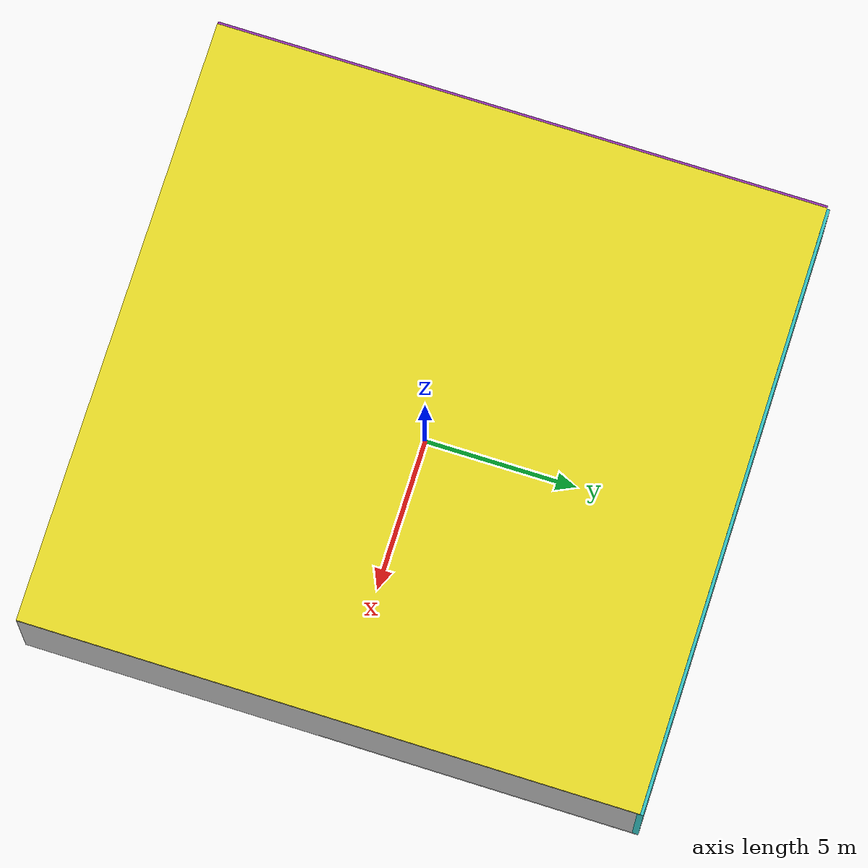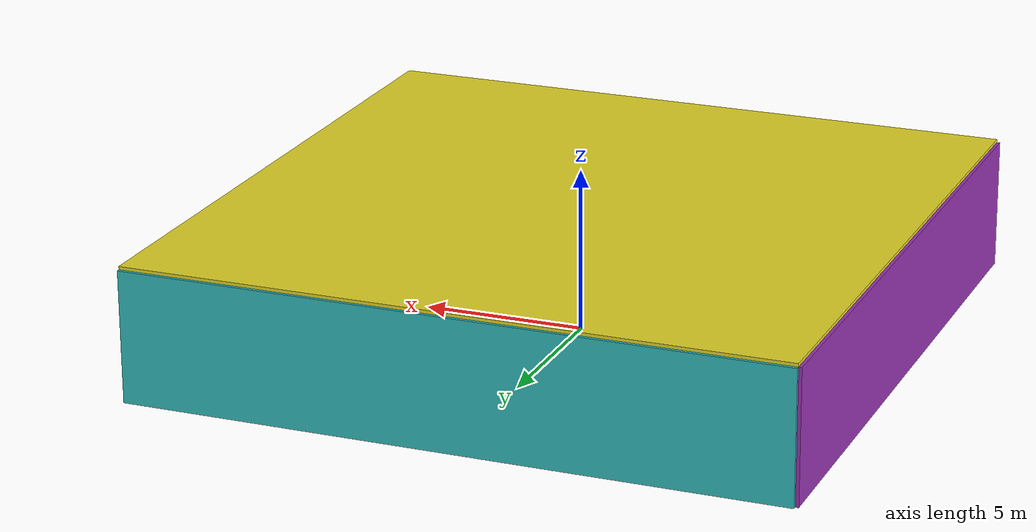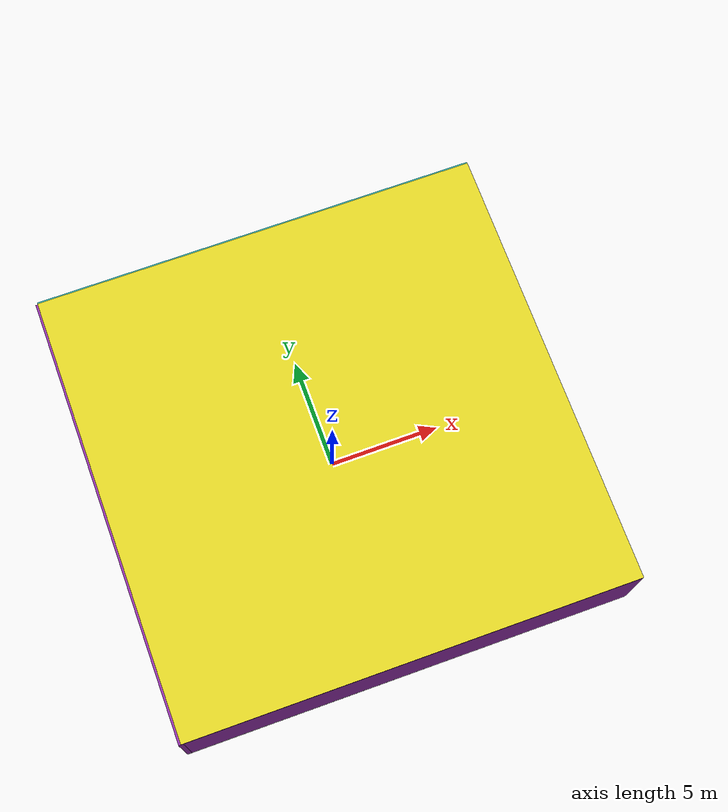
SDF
<sdf version="1.4">
 <world name="default">
  <physics type="ode">
   <max_step_size>0.001</max_step_size>
   <real_time_factor>1</real_time_factor>
   <real_time_update_rate>1000</real_time_update_rate>
   <gravity>0 0 -9.8</gravity>
  </physics>
  <scene><ambient>0.4 0.4 0.4 1</ambient><background>0.7 0.7 0.7 1</background><shadows>1</shadows></scene>
  <model name="Surrounding">
   <static>1</static>
   <link name="Ceiling">
    <collision name="Ceiling_Collision"><geometry><box><size>20 20 0.1</size></box></geometry></collision>
    <visual name="Ceiling_Visual">
     <geometry><box><size>20 20 0.1</size></box></geometry>
     <material>
      <script><uri>file://media/materials/scripts/gazebo.material</uri><name>Gazebo/Yellow</name></script>
     </material>
    </visual>
    <pose>0 0 4.05 0 0 0</pose>
   </link>
   <link name="Wall_South">
    <collision name="Wall_South_Collision">
     <geometry><box><size>20 0 4</size></box></geometry>
     <pose>0 0 2 0 -0 0</pose>
    </collision>
    <visual name="Wall_South_Visual">
     <pose>0 0 2 0 -0 0</pose>
     <geometry><box><size>20 0 4</size></box></geometry>
     <material>
      <script><uri>file://media/materials/scripts/gazebo.material</uri><name>Gazebo/PurpleGlow</name></script>
     </material>
    </visual>
    <velocity_decay><linear>0</linear><angular>0</angular></velocity_decay>
    <pose>0 -10 0 0 -0 0</pose>
   </link>
   <link name="Wall_East">
    <collision name="Wall_21_Collision">
     <geometry><box><size>20 0 4</size></box></geometry>
     <pose>0 0 2 0 -0 0</pose>
    </collision>
    <visual name="Wall_21_Visual">
     <pose>0 0 2 0 -0 0</pose>
     <geometry><box><size>20 0 4</size></box></geometry>
     <material>
      <script><uri>file://media/materials/scripts/gazebo.material</uri><name>Gazebo/JointAnchor</name></script>
     </material>
    </visual>
    <velocity_decay><linear>0</linear><angular>0</angular></velocity_decay>
    <pose>10 0 0 0 -0 1.5708</pose>
   </link>
   <link name="Wall_North">
    <collision name="Wall_22_Collision">
     <geometry><box><size>20 0.2 4</size></box></geometry>
     <pose>0 0 2 0 -0 0</pose>
    </collision>
    <visual name="Wall_22_Visual">
     <pose>0 0 2 0 -0 0</pose>
     <geometry><box><size>20 0.2 4</size></box></geometry>
     <material>
      <script><uri>file://media/materials/scripts/gazebo.material</uri><name>Gazebo/TurquoiseGlow</name></script>
     </material>
    </visual>
    <velocity_decay><linear>0</linear><angular>0</angular></velocity_decay>
    <pose>0 10 0 0 -0 0</pose>
   </link>
   <link name="Wall_West">
    <collision name="Wall_23_Collision">
     <geometry><box><size>20 0.2 4</size></box></geometry>
     <pose>0 0 2 0 -0 0</pose>
    </collision>
    <visual name="Wall_23_Visual">
     <pose>0 0 2 0 -0 0</pose>
     <geometry><box><size>20 0.2 4</size></box></geometry>
     <material>
      <script><uri>file://media/materials/scripts/gazebo.material</uri><name>Gazebo/PurpleGlow</name></script>
     </material>
    </visual>
    <velocity_decay><linear>0</linear><angular>0</angular></velocity_decay>
    <pose>-10 0 0 0 0 -1.5708</pose>
   </link>
   <link name="Ground_link">
    <collision name="collision">
     <pose>0 0 .05 0 -0 0</pose>
     <geometry><box><size>20 20 0.1</size></box></geometry>
    </collision>
    <visual name="visual">
     <pose>0 0 .05 0 -0 0</pose>
     <geometry><box><size>20 20 0.1</size></box></geometry>
     <material>
      <script><uri>file://media/materials/scripts/gazebo.material</uri><name>Gazebo/LightOff</name></script>
     </material>
    </visual>
   </link>
   <static>1</static>
  </model>
  <spherical_coordinates>
   <surface_model>EARTH_WGS84</surface_model>
   <latitude_deg>0</latitude_deg>
   <longitude_deg>0</longitude_deg>
   <elevation>0</elevation>
   <heading_deg>0</heading_deg>
  </spherical_coordinates>
  <light name="lightball_0" type="diffuse">
   <diffuse>0.8 0.8 0.8 1</diffuse>
   <specular>0.2 0.2 0.2 1</specular>
   <attenuation>
    <range>100</range>
    <constant>0.7</constant>
    <linear>0.01</linear>
    <quadratic>0.001</quadratic>
   </attenuation>
   <direction>-0.5 0.1 -0.9</direction>
   <pose>4.56127079519 -0.827660553126 3.57179560646 0 0 0</pose>
  </light>
  <light name="lightball_1" type="diffuse">
   <diffuse>0.8 0.8 0.8 1</diffuse>
   <specular>0.2 0.2 0.2 1</specular>
   <attenuation>
    <range>100</range>
    <constant>0.7</constant>
    <linear>0.01</linear>
    <quadratic>0.001</quadratic>
   </attenuation>
   <direction>-0.5 0.1 -0.9</direction>
   <pose>3.62844337183 -8.42596316242 1.10538693385 0 0 0</pose>
  </light>
  <light name="lightball_2" type="diffuse">
   <diffuse>0.8 0.8 0.8 1</diffuse>
   <specular>0.2 0.2 0.2 1</specular>
   <attenuation>
    <range>100</range>
    <constant>0.7</constant>
    <linear>0.01</linear>
    <quadratic>0.001</quadratic>
   </attenuation>
   <direction>-0.5 0.1 -0.9</direction>
   <pose>-8.95071420268 -5.93969302094 1.38543851848 0 0 0</pose>
  </light>
  <light name="lightball_3" type="diffuse">
   <diffuse>0.8 0.8 0.8 1</diffuse>
   <specular>0.2 0.2 0.2 1</specular>
   <attenuation>
    <range>100</range>
    <constant>0.7</constant>
    <linear>0.01</linear>
    <quadratic>0.001</quadratic>
   </attenuation>
   <direction>-0.5 0.1 -0.9</direction>
   <pose>-3.2316067388 0.173711410819 3.33932883222 0 0 0</pose>
  </light>
  <light name="lightball_4" type="diffuse">
   <diffuse>0.8 0.8 0.8 1</diffuse>
   <specular>0.2 0.2 0.2 1</specular>
   <attenuation>
    <range>100</range>
    <constant>0.7</constant>
    <linear>0.01</linear>
    <quadratic>0.001</quadratic>
   </attenuation>
   <direction>-0.5 0.1 -0.9</direction>
   <pose>-2.06531086419 -3.16007288125 1.06596553352 0 0 0</pose>
  </light>
  <light name="lightball_5" type="diffuse">
   <diffuse>0.8 0.8 0.8 1</diffuse>
   <specular>0.2 0.2 0.2 1</specular>
   <attenuation>
    <range>100</range>
    <constant>0.7</constant>
    <linear>0.01</linear>
    <quadratic>0.001</quadratic>
   </attenuation>
   <direction>-0.5 0.1 -0.9</direction>
   <pose>2.15687450793 -1.68965335093 3.34848596271 0 0 0</pose>
  </light>
  <light name="lightball_6" type="diffuse">
   <diffuse>0.8 0.8 0.8 1</diffuse>
   <specular>0.2 0.2 0.2 1</specular>
   <attenuation>
    <range>100</range>
    <constant>0.7</constant>
    <linear>0.01</linear>
    <quadratic>0.001</quadratic>
   </attenuation>
   <direction>-0.5 0.1 -0.9</direction>
   <pose>-5.6511670284 1.38827117485 3.85125798414 0 0 0</pose>
  </light>
  <light name="lightball_7" type="diffuse">
   <diffuse>0.8 0.8 0.8 1</diffuse>
   <specular>0.2 0.2 0.2 1</specular>
   <attenuation>
    <range>100</range>
    <constant>0.7</constant>
    <linear>0.01</linear>
    <quadratic>0.001</quadratic>
   </attenuation>
   <direction>-0.5 0.1 -0.9</direction>
   <pose>-2.93730354069 9.50943855278 1.32005325659 0 0 0</pose>
  </light>
  <light name="lightball_8" type="diffuse">
   <diffuse>0.8 0.8 0.8 1</diffuse>
   <specular>0.2 0.2 0.2 1</specular>
   <attenuation>
    <range>100</range>
    <constant>0.7</constant>
    <linear>0.01</linear>
    <quadratic>0.001</quadratic>
   </attenuation>
   <direction>-0.5 0.1 -0.9</direction>
   <pose>-0.205327395366 8.48350674173 2.07555303692 0 0 0</pose>
  </light>
  <light name="lightball_9" type="diffuse">
   <diffuse>0.8 0.8 0.8 1</diffuse>
   <specular>0.2 0.2 0.2 1</specular>
   <attenuation>
    <range>100</range>
    <constant>0.7</constant>
    <linear>0.01</linear>
    <quadratic>0.001</quadratic>
   </attenuation>
   <direction>-0.5 0.1 -0.9</direction>
   <pose>-6.36702401994 0.175677348998 3.19656562164 0 0 0</pose>
  </light>
  <light name="lightball_10" type="diffuse">
   <diffuse>0.8 0.8 0.8 1</diffuse>
   <specular>0.2 0.2 0.2 1</specular>
   <attenuation>
    <range>100</range>
    <constant>0.7</constant>
    <linear>0.01</linear>
    <quadratic>0.001</quadratic>
   </attenuation>
   <direction>-0.5 0.1 -0.9</direction>
   <pose>0.849230365524 7.99134295676 0.822814709092 0 0 0</pose>
  </light>
  <light name="lightball_11" type="diffuse">
   <diffuse>0.8 0.8 0.8 1</diffuse>
   <specular>0.2 0.2 0.2 1</specular>
   <attenuation>
    <range>100</range>
    <constant>0.7</constant>
    <linear>0.01</linear>
    <quadratic>0.001</quadratic>
   </attenuation>
   <direction>-0.5 0.1 -0.9</direction>
   <pose>-6.19749422486 3.19149251628 1.21580970314 0 0 0</pose>
  </light>
  <light name="lightball_12" type="diffuse">
   <diffuse>0.8 0.8 0.8 1</diffuse>
   <specular>0.2 0.2 0.2 1</specular>
   <attenuation>
    <range>100</range>
    <constant>0.7</constant>
    <linear>0.01</linear>
    <quadratic>0.001</quadratic>
   </attenuation>
   <direction>-0.5 0.1 -0.9</direction>
   <pose>7.78338755776 -0.88671896812 2.53751074134 0 0 0</pose>
  </light>
  <light name="lightball_13" type="diffuse">
   <diffuse>0.8 0.8 0.8 1</diffuse>
   <specular>0.2 0.2 0.2 1</specular>
   <attenuation>
    <range>100</range>
    <constant>0.7</constant>
    <linear>0.01</linear>
    <quadratic>0.001</quadratic>
   </attenuation>
   <direction>-0.5 0.1 -0.9</direction>
   <pose>2.81698475285 1.8976661739 1.46751081963 0 0 0</pose>
  </light>
  <include><uri>model://cabinet</uri><pose>-6.58692723012 7.05524958392 0 0 0 1.45331546876</pose></include>
  <include>
   <uri>model://robocup_3Dsim_goal</uri>
   <pose>-0.356865007899 3.56497574625 0 0 0 2.15046537993</pose>
  </include>
  <include>
   <uri>model://textured_shapes</uri>
   <pose>-1.2350026219 8.25584092616 0 0 0 1.66564446367</pose>
  </include>
  <include>
   <uri>model://robocup_3Dsim_goal</uri>
   <pose>0.791326886569 8.4143040372 0 0 0 2.07837600114</pose>
  </include>
  <include><uri>model://cabinet</uri><pose>3.77585820914 5.21968937043 0 0 0 1.54216316062</pose></include>
  <include><uri>model://table</uri><pose>6.88668088396 2.11343257291 0 0 0 0.347959918439</pose></include>
 </world>
</sdf>

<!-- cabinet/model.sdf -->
<sdf version="1.5">
  <model name="cabinet">
    <static>true</static>
    <link name="cabinet_bottom_plate">
      <inertial>
        <pose>0 0 -1 0 0 0</pose>
        <inertia>
          <ixx>2.050000</ixx>
          <ixy>0</ixy>
          <ixz>0</ixz>
          <iyy>2.050000</iyy>
          <iyz>0</iyz>
          <izz>2.050000</izz>
        </inertia>
        <mass>25.000000</mass>
      </inertial>
      <collision name="cabinet_bottom_plate_geom">
        <pose>0 0 0.010000 0 0 0</pose>
        <geometry>
          <box>
            <size>0.450000 0.450000 0.020000</size>
          </box>
        </geometry>
      </collision>
      <visual name="cabinet_bottom_plate_geom_visual">
        <pose>0 0 0.010000 0 0 0</pose>
        <geometry>
          <box>
            <size>0.450000 0.450000 0.020000</size>
          </box>
        </geometry>
        <material>
          <script>
            <uri>model://media/materials/scripts/gazebo.material</uri>
            <name>Gazebo/Wood</name>
          </script>
        </material>
      </visual>
      <collision name="cabinet_bottom_plate_geom_cabinet_back_plate">
        <pose>0.235000 0 0.510000 0 0 0</pose>
        <geometry>
          <box>
            <size>0.020000 0.450000 1.020000</size>
          </box>
        </geometry>
      </collision>
      <visual name="cabinet_bottom_plate_geom_cabinet_back_plate_visual">
        <pose>0.235000 0 0.510000 0 0 0</pose>
        <geometry>
          <box>
            <size>0.020000 0.450000 1.020000</size>
          </box>
        </geometry>
        <material>
          <script>
            <uri>model://media/materials/scripts/gazebo.material</uri>
            <name>Gazebo/Wood</name>
          </script>
        </material>
      </visual>
      <collision name="cabinet_bottom_plate_geom_cabinet_left_plate">
        <pose>0 0.235000 0.510000 0 0 0</pose>
        <geometry>
          <box>
            <size>0.450000 0.020000 1.020000</size>
          </box>
        </geometry>
      </collision>
      <visual name="cabinet_bottom_plate_geom_cabinet_left_plate_visual">
        <pose>0 0.235000 0.510000 0 0 0</pose>
        <geometry>
          <box>
            <size>0.450000 0.020000 1.020000</size>
          </box>
        </geometry>
        <material>
          <script>
            <uri>model://media/materials/scripts/gazebo.material</uri>
            <name>Gazebo/Wood</name>
          </script>
        </material>
      </visual>
      <collision name="cabinet_bottom_plate_geom_cabinet_middle_plate">
        <pose>0 0 0.510000 0 0 0</pose>
        <geometry>
          <box>
            <size>0.450000 0.450000 0.020000</size>
          </box>
        </geometry>
      </collision>
      <visual name="cabinet_bottom_plate_geom_cabinet_middle_plate_visual">
        <pose>0 0 0.510000 0 0 0</pose>
        <geometry>
          <box>
            <size>0.450000 0.450000 0.020000</size>
          </box>
        </geometry>
        <material>
          <script>
            <uri>model://media/materials/scripts/gazebo.material</uri>
            <name>Gazebo/Wood</name>
          </script>
        </material>
      </visual>
      <collision name="cabinet_bottom_plate_geom_cabinet_right_plate">
        <pose>0 -0.235000 0.510000 0 0 0</pose>
        <geometry>
          <box>
            <size>0.450000 0.020000 1.020000</size>
          </box>
        </geometry>
      </collision>
      <visual name="cabinet_bottom_plate_geom_cabinet_right_plate_visual">
        <pose>0 -0.235000 0.510000 0 0 0</pose>
        <geometry>
          <box>
            <size>0.450000 0.020000 1.020000</size>
          </box>
        </geometry>
        <material>
          <script>
            <uri>model://media/materials/scripts/gazebo.material</uri>
            <name>Gazebo/Wood</name>
          </script>
        </material>
      </visual>
      <collision name="cabinet_bottom_plate_geom_cabinet_top_plate">
        <pose>0 0 1.010000 0 0 0</pose>
        <geometry>
          <box>
            <size>0.450000 0.450000 0.020000</size>
          </box>
        </geometry>
      </collision>
      <visual name="cabinet_bottom_plate_geom_cabinet_top_plate_visual">
        <pose>0 0 1.010000 0 0 0</pose>
        <geometry>
          <box>
            <size>0.450000 0.450000 0.020000</size>
          </box>
        </geometry>
        <material>
          <script>
            <uri>model://media/materials/scripts/gazebo.material</uri>
            <name>Gazebo/Wood</name>
          </script>
        </material>
      </visual>
    </link>
  </model>
</sdf>

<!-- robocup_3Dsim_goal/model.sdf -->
<sdf version="1.5">
  <model name="robocup_3d_goal">
    <static>true</static>
    <link name="left_post">
      <pose>0 1.05 0.45 0 0 0</pose>
      <collision name="collision">
        <geometry>
          <cylinder>
            <radius>0.05</radius>
            <length>0.9</length>
          </cylinder>
        </geometry>
      </collision>
      <visual name="visual">
        <geometry>
          <cylinder>
            <radius>0.05</radius>
            <length>0.9</length>
          </cylinder>
        </geometry>
        <material>
          <script>
            <uri>file://media/materials/scripts/gazebo.material</uri>
            <name>Gazebo/ZincYellow</name>
          </script>
        </material>
      </visual>
    </link>
    <link name="left_support_horiz_lower">
      <pose>0.30 1.05 0.01 0 0 0</pose>
      <collision name="collision">
        <geometry>
          <box>
            <size>0.50 0.02 0.02</size>
          </box>
        </geometry>
      </collision>
      <visual name="visual">
        <geometry>
          <box>
            <size>0.50 0.02 0.02</size>
          </box>
        </geometry>
        <material>
          <script>
            <uri>file://media/materials/scripts/gazebo.material</uri>
            <name>Gazebo/White</name>
          </script>
        </material>
      </visual>
    </link>
    <link name="left_support_horiz_upper">
      <pose>0.30 1.05 0.79 0 0 0</pose>
      <collision name="collision">
        <geometry>
          <box>
            <size>0.50 0.02 0.02</size>
          </box>
        </geometry>
      </collision>
      <visual name="visual">
        <geometry>
          <box>
            <size>0.50 0.02 0.02</size>
          </box>
        </geometry>
        <material>
          <script>
            <uri>file://media/materials/scripts/gazebo.material</uri>
            <name>Gazebo/White</name>
          </script>
        </material>
      </visual>
    </link>
    <link name="left_support_vertical">
      <pose>0.56 1.05 0.4 0 1.5708 0</pose>
      <collision name="collision">
        <geometry>
          <box>
            <size>0.80 0.02 0.02</size>
          </box>
        </geometry>
      </collision>
      <visual name="visual">
        <geometry>
          <box>
            <size>0.80 0.02 0.02</size>
          </box>
        </geometry>
        <material>
          <script>
            <uri>file://media/materials/scripts/gazebo.material</uri>
            <name>Gazebo/White</name>
          </script>
        </material>
      </visual>
    </link>
    <link name="right_support_horiz_lower">
      <pose>0.30 -1.05 0.01 0 0 0</pose>
      <collision name="collision">
        <geometry>
          <box>
            <size>0.50 0.02 0.02</size>
          </box>
        </geometry>
      </collision>
      <visual name="visual">
        <geometry>
          <box>
            <size>0.50 0.02 0.02</size>
          </box>
        </geometry>
        <material>
          <script>
            <uri>file://media/materials/scripts/gazebo.material</uri>
            <name>Gazebo/White</name>
          </script>
        </material>
      </visual>
    </link>
    <link name="right_support_horiz_upper">
      <pose>0.30 -1.05 0.79 0 0 0</pose>
      <collision name="collision">
        <geometry>
          <box>
            <size>0.50 0.02 0.02</size>
          </box>
        </geometry>
      </collision>
      <visual name="visual">
        <geometry>
          <box>
            <size>0.50 0.02 0.02</size>
          </box>
        </geometry>
        <material>
          <script>
            <uri>file://media/materials/scripts/gazebo.material</uri>
            <name>Gazebo/White</name>
          </script>
        </material>
      </visual>
    </link>
    <link name="right_support_vertical">
      <pose>0.56 -1.05 0.4 0 1.5708 0</pose>
      <collision name="collision">
        <geometry>
          <box>
            <size>0.80 0.02 0.02</size>
          </box>
        </geometry>
      </collision>
      <visual name="visual">
        <geometry>
          <box>
            <size>0.80 0.02 0.02</size>
          </box>
        </geometry>
        <material>
          <script>
            <uri>file://media/materials/scripts/gazebo.material</uri>
            <name>Gazebo/White</name>
          </script>
        </material>
      </visual>
    </link>
    <link name="center_support_horiz_lower">
      <pose>0.56 0 0.01 0 1.5708 0</pose>
      <collision name="collision">
        <geometry>
          <box>
            <size>0.02 2.08 0.02</size>
          </box>
        </geometry>
      </collision>
      <visual name="visual">
        <geometry>
          <box>
            <size>0.02 2.08 0.02</size>
          </box>
        </geometry>
        <material>
          <script>
            <uri>file://media/materials/scripts/gazebo.material</uri>
            <name>Gazebo/White</name>
          </script>
        </material>
      </visual>
    </link>
    <link name="center_support_horiz_upper">
      <pose>0.56 0 0.79 0 1.5708 0</pose>
      <collision name="collision">
        <geometry>
          <box>
            <size>0.02 2.08 0.02</size>
          </box>
        </geometry>
      </collision>
      <visual name="visual">
        <geometry>
          <box>
            <size>0.02 2.08 0.02</size>
          </box>
        </geometry>
        <material>
          <script>
            <uri>file://media/materials/scripts/gazebo.material</uri>
            <name>Gazebo/White</name>
          </script>
        </material>
      </visual>
    </link>
    <link name="right_post">
      <pose>0 -1.05 0.45 0 0 0</pose>
      <collision name="collision">
        <geometry>
          <cylinder>
            <radius>0.05</radius>
            <length>0.9</length>
          </cylinder>
        </geometry>
      </collision>
      <visual name="visual">
        <geometry>
          <cylinder>
            <radius>0.05</radius>
            <length>0.9</length>
          </cylinder>
        </geometry>
        <material>
          <script>
            <uri>file://media/materials/scripts/gazebo.material</uri>
            <name>Gazebo/ZincYellow</name>
          </script>
        </material>
      </visual>
    </link>
    <link name="crossbar">
      <pose>0 0 0.85 1.57 1.57 0</pose>
      <collision name="collision">
        <geometry>
          <cylinder>
            <radius>0.05</radius>
            <length>2.0</length>
          </cylinder>
        </geometry>
      </collision>
      <visual name="visual">
        <geometry>
          <cylinder>
            <radius>0.05</radius>
            <length>2.0</length>
          </cylinder>
        </geometry>
        <material>
          <script>
            <uri>file://media/materials/scripts/gazebo.material</uri>
            <name>Gazebo/ZincYellow</name>
          </script>
        </material>
      </visual>
    </link>
    <link name="center_net">
      <pose>0.56 0 0.40 0 0 0</pose>
      <collision name="collision">
        <geometry>
          <box>
            <size>0.01 2.1 0.80</size>
          </box>
        </geometry>
      </collision>
      <visual name="visual">
        <geometry>
          <box>
            <size>0.01 2.1 0.80</size>
          </box>
        </geometry>
        <material>
          <script>
            <uri>model://../model_source/models/robocup09_spl_field/materials/scripts/</uri>
            <uri>model://../model_source/models/robocup09_spl_field/materials/textures/</uri>
            <name>RoboCup/Net</name>
          </script>
        </material>
      </visual>
    </link>
    <link name="left_net">
      <pose>0.30 1.05 0.40 0 0 0</pose>
      <collision name="collision">
        <geometry>
          <box>
            <size>0.50 0.01 0.76</size>
          </box>
        </geometry>
      </collision>
      <visual name="visual">
        <geometry>
          <box>
            <size>0.50 0.01 0.76</size>
          </box>
        </geometry>
        <material>
          <script>
            <uri>model://../model_source/models/robocup09_spl_field/materials/scripts/</uri>
            <uri>model://../model_source/models/robocup09_spl_field/materials/textures/</uri>
            <name>RoboCup/Net</name>
          </script>
        </material>
      </visual>
    </link>
    <link name="right_net">
      <pose>0.30 -1.05 0.40 0 0 0</pose>
      <collision name="collision">
        <geometry>
          <box>
            <size>0.50 0.01 0.76</size>
          </box>
        </geometry>
      </collision>
      <visual name="visual">
        <geometry>
          <box>
            <size>0.50 0.01 0.76</size>
          </box>
        </geometry>
        <material>
          <script>
            <uri>model://../model_source/models/robocup09_spl_field/materials/scripts/</uri>
            <uri>model://../model_source/models/robocup09_spl_field/materials/textures/</uri>
            <name>RoboCup/Net</name>
          </script>
        </material>
      </visual>
    </link>
  </model>
</sdf>

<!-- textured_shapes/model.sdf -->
<sdf version="1.6">
  <model name="textured_shapes">
    <pose>0 0 0.5 0 0 0</pose>
    <link name="box">
      <pose>0 -1.5 0 0 0 0</pose>
      <collision name="collision">
        <geometry>
          <box>
            <size>1 1 1</size>
          </box>
        </geometry>
      </collision>
      <visual name="visual">
        <geometry>
          <box>
            <size>1 1 1</size>
          </box>
        </geometry>
        <material>
          <script>
            <uri>model://../model_source/models/textured_shapes/materials/scripts</uri>
            <uri>model://../model_source/models/textured_shapes/materials/textures</uri>
            <name>TexturedShape/Squares</name>
          </script>
        </material>
      </visual>
    </link>
    <link name="sphere">
      <collision name="collision">
        <geometry>
          <sphere>
            <radius>0.5</radius>
          </sphere>
        </geometry>
      </collision>
      <visual name="visual">
        <geometry>
          <sphere>
            <radius>0.5</radius>
          </sphere>
        </geometry>
        <material>
          <script>
            <uri>model://../model_source/models/textured_shapes/materials/scripts</uri>
            <uri>model://../model_source/models/textured_shapes/materials/textures</uri>
            <name>TexturedShape/Squares</name>
          </script>
        </material>
      </visual>
    </link>
    <link name="cylinder">
      <pose>0 1.5 0 0 0 0</pose>
      <collision name="collision">
        <geometry>
          <cylinder>
            <radius>0.5</radius>
            <length>1</length>
          </cylinder>
        </geometry>
      </collision>
      <visual name="visual">
        <geometry>
          <cylinder>
            <radius>0.5</radius>
            <length>1</length>
          </cylinder>
        </geometry>
        <material>
          <script>
            <uri>model://../model_source/models/textured_shapes/materials/scripts</uri>
            <uri>model://../model_source/models/textured_shapes/materials/textures</uri>
            <name>TexturedShape/Squares</name>
          </script>
        </material>
      </visual>
    </link>
  </model>
</sdf>

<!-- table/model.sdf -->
<sdf version="1.5">
  <model name="table">
    <static>true</static>
    <link name="link">
      <collision name="surface">
        <pose>0 0 1.0 0 0 0</pose>
        <geometry>
          <box>
            <size>1.5 0.8 0.03</size>
          </box>
        </geometry>
        <surface>
          <friction>
            <ode>
              <mu>0.6</mu>
              <mu2>0.6</mu2>
            </ode>
          </friction>
        </surface>
      </collision>
      <visual name="visual1">
        <pose>0 0 1.0 0 0 0</pose>
        <geometry>
          <box>
            <size>1.5 0.8 0.03</size>
          </box>
        </geometry>
        <material>
          <script>
            <uri>model://media/materials/scripts/gazebo.material</uri>
            <name>Gazebo/Wood</name>
          </script>
        </material>
      </visual>
      <collision name="front_left_leg">
        <pose>0.68 0.38 0.5 0 0 0</pose>
        <geometry>
          <cylinder>
            <radius>0.02</radius>
            <length>1.0</length>
          </cylinder>
        </geometry>
      </collision>
      <visual name="front_left_leg">
        <pose>0.68 0.38 0.5 0 0 0</pose>
        <geometry>
          <cylinder>
            <radius>0.02</radius>
            <length>1.0</length>
          </cylinder>
        </geometry>
        <material>
          <script>
            <uri>model://media/materials/scripts/gazebo.material</uri>
            <name>Gazebo/Grey</name>
          </script>
        </material>
      </visual>
      <collision name="front_right_leg">
        <pose>0.68 -0.38 0.5 0 0 0</pose>
        <geometry>
          <cylinder>
            <radius>0.02</radius>
            <length>1.0</length>
          </cylinder>
        </geometry>
      </collision>
      <visual name="front_right_leg">
        <pose>0.68 -0.38 0.5 0 0 0</pose>
        <geometry>
          <cylinder>
            <radius>0.02</radius>
            <length>1.0</length>
          </cylinder>
        </geometry>
        <material>
          <script>
            <uri>model://media/materials/scripts/gazebo.material</uri>
            <name>Gazebo/Grey</name>
          </script>
        </material>
      </visual>
      <collision name="back_right_leg">
        <pose>-0.68 -0.38 0.5 0 0 0</pose>
        <geometry>
          <cylinder>
            <radius>0.02</radius>
            <length>1.0</length>
          </cylinder>
        </geometry>
      </collision>
      <visual name="back_right_leg">
        <pose>-0.68 -0.38 0.5 0 0 0</pose>
        <geometry>
          <cylinder>
            <radius>0.02</radius>
            <length>1.0</length>
          </cylinder>
        </geometry>
        <material>
          <script>
            <uri>model://media/materials/scripts/gazebo.material</uri>
            <name>Gazebo/Grey</name>
          </script>
        </material>
      </visual>
      <collision name="back_left_leg">
        <pose>-0.68 0.38 0.5 0 0 0</pose>
        <geometry>
          <cylinder>
            <radius>0.02</radius>
            <length>1.0</length>
          </cylinder>
        </geometry>
      </collision>
      <visual name="back_left_leg">
        <pose>-0.68 0.38 0.5 0 0 0</pose>
        <geometry>
          <cylinder>
            <radius>0.02</radius>
            <length>1.0</length>
          </cylinder>
        </geometry>
        <material>
          <script>
            <uri>model://media/materials/scripts/gazebo.material</uri>
            <name>Gazebo/Grey</name>
          </script>
        </material>
      </visual>
    </link>
  </model>
</sdf>
